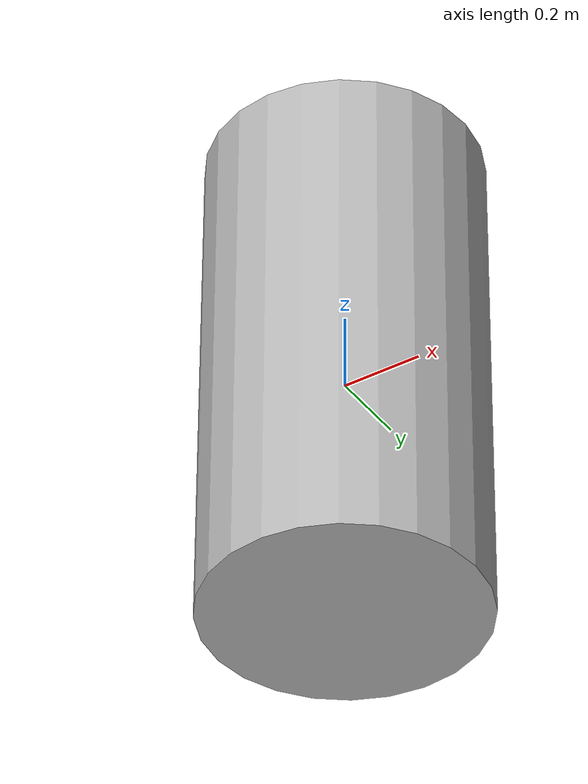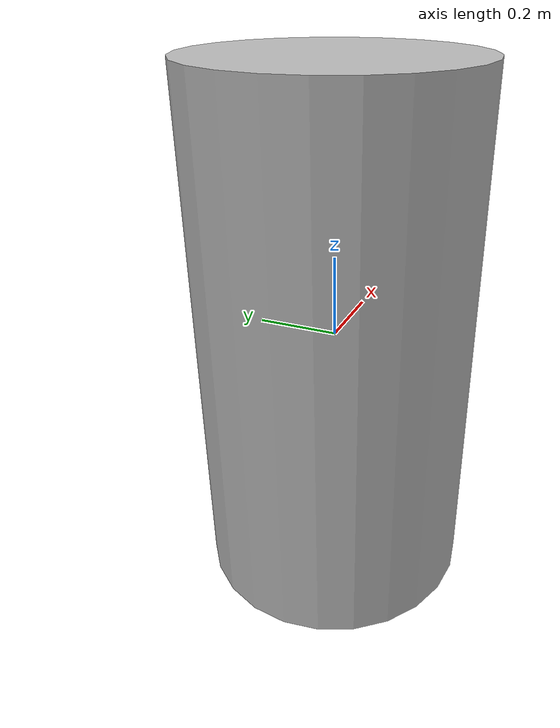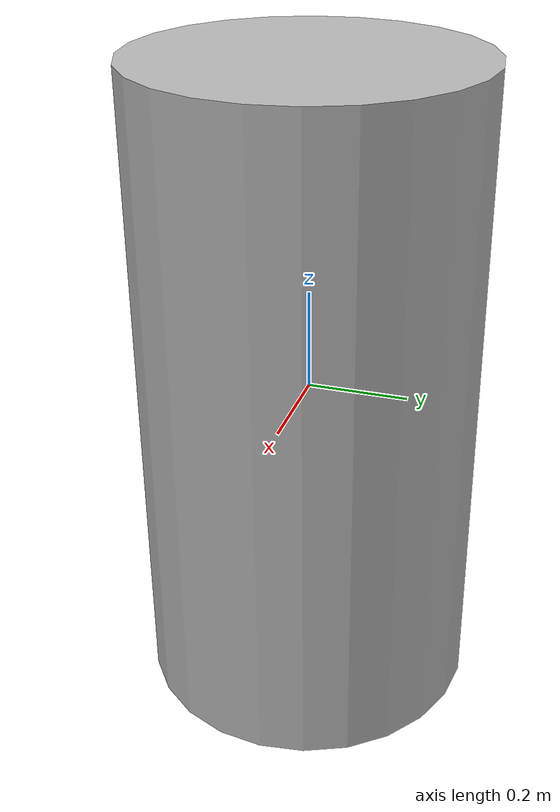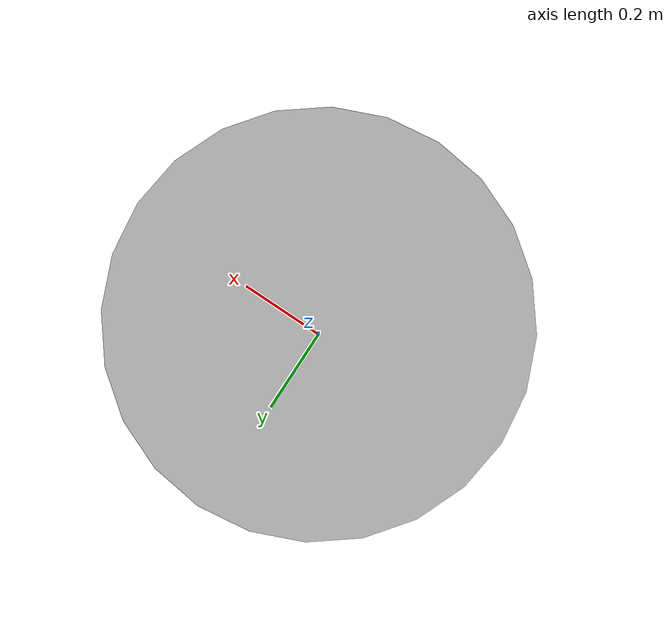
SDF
<?xml version='1.0'?>
<sdf version='1.4'>
<model name="zylinder">

  <link name="base">
    <gravity>0</gravity>
    <!-- Offset the base by half the lenght of the cylinder -->
    <pose>0 0 0 0 0 0</pose>
    <collision name="base_collision">
      <geometry>
        <cylinder>
          <!-- Radius and length provided by Velodyne -->
          <radius>.45</radius>
          <length>1.3</length>
        </cylinder>
      </geometry>
    </collision>

    <!-- The visual is mostly a copy of the collision -->
    <visual name="base_visual">
      <geometry>
        <cylinder>
          <radius>.34</radius>
          <length>1.3</length>
        </cylinder>
      </geometry>
    </visual>
  </link>
</model>
</sdf>
